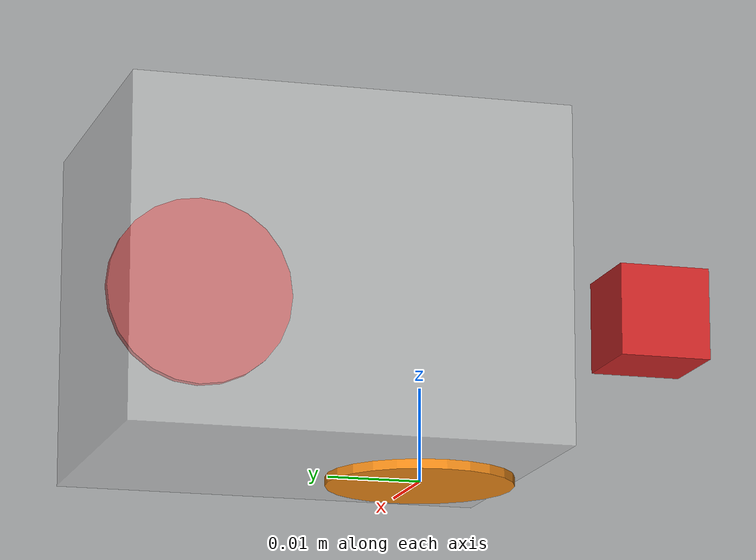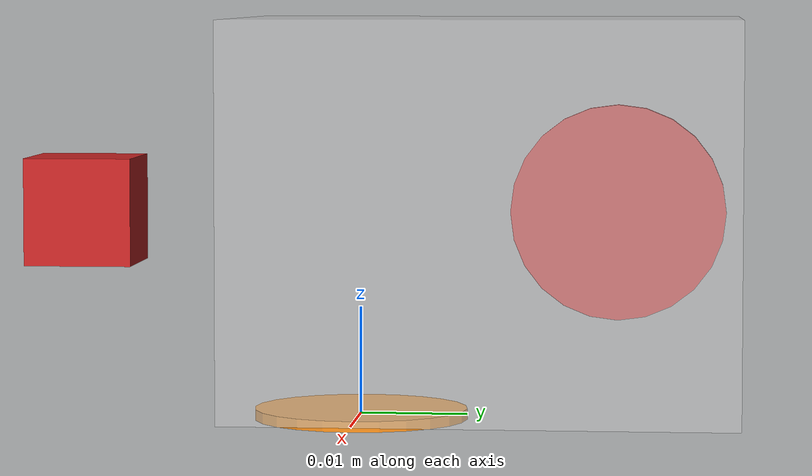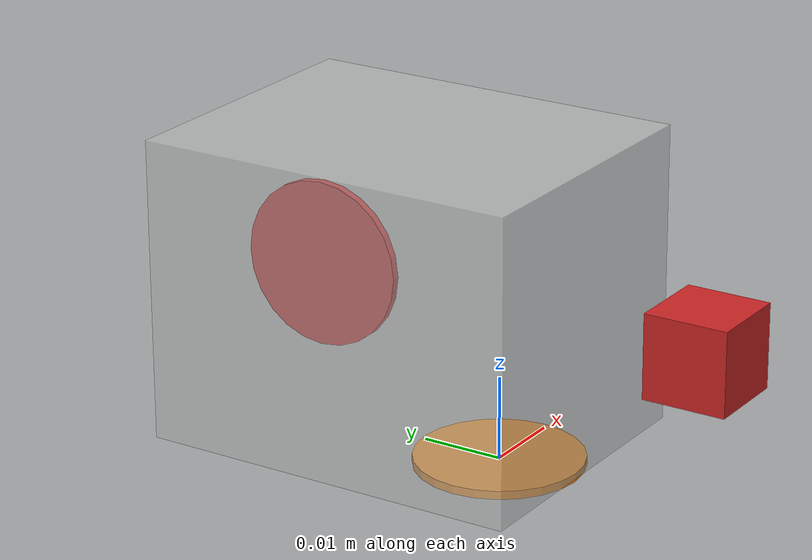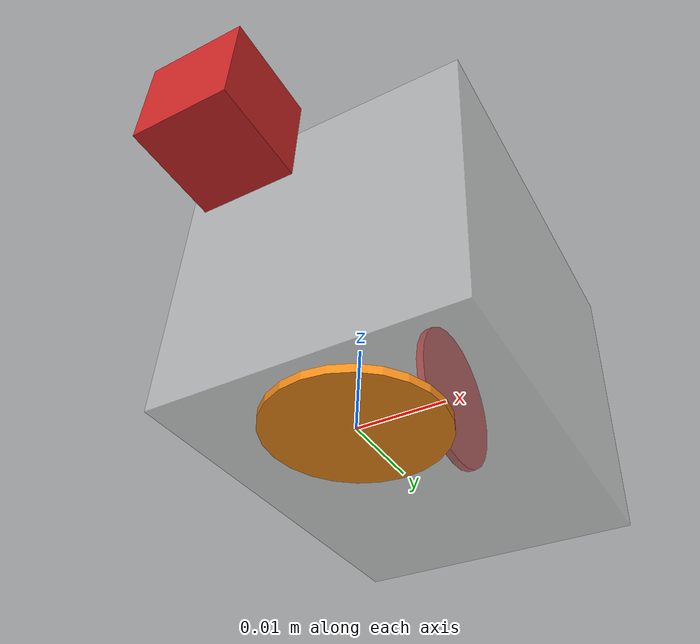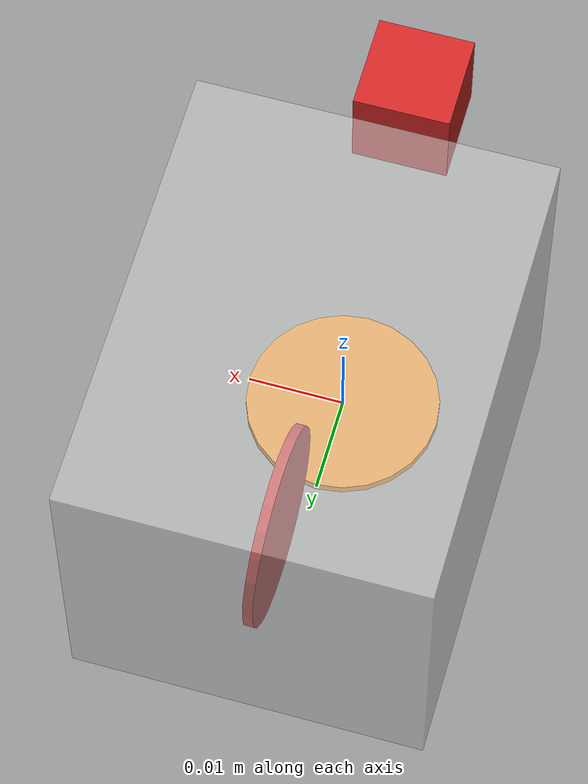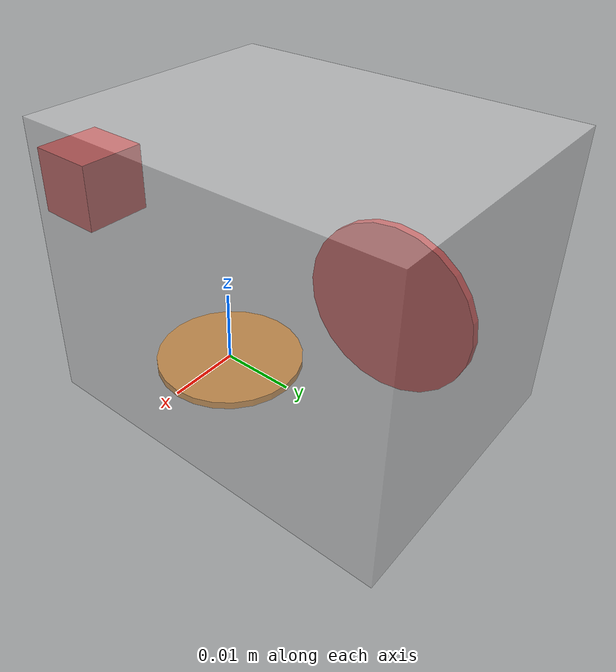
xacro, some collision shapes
<?xml version="1.0"?>
<robot name="my_robo" xmlns:xacro="http://ros.org/wiki/xacro">\
	<xacro:include filename="$(find dynamixel_description)/urdf/_2XL430.urdf.xacro"/>
	<xacro:include filename="$(find dynamixel_description)/urdf/common_properties.xacro"/>

	<link name="base">
		<visual>
			<origin xyz="0 0 0" rpy="0 0 0"/>
			<geometry>
				<cylinder length="0.001" radius="0.01"/>
			</geometry>
			<material name="orange"/>
		</visual>
	</link>

	<xacro:servo_2XL430 parent="base" center_parent="false" child="hone" center_child="true" />

	<link name="hone">
		<visual>
			<origin xyz="0 0 0" rpy="0 0 0"/>
			<geometry>
				<cylinder length="0.001" radius="0.01"/>
			</geometry>
			<material name="red"/>
		</visual>
	</link>

	<link name="weight">
		<visual>
			<origin xyz="0 0 0" rpy="0 0 0"/>
			<geometry>
				<box size="0.01 0.01 0.01"/>
			</geometry>
			<material name="red"/>
		</visual>
		<inertial>
			<origin xyz="0 0 0" rpy="0 0 0" />
			<mass value="0.1" />
			<inertia
				ixx="0.01" ixy="0.0" ixz="0.0"
				iyy="0.01" iyz="0.0"
				izz="0.01" />
		</inertial>
	</link>

	<joint name="fix_wight" type="fixed">
		<parent link="hone"/>
		<child link="weight"/>
		<origin xyz="0 0.05 0" rpy="0 0 0"/>
	</joint>

	<gazebo reference="base">
		<material>Gazebo/Orange</material>
	</gazebo>

	<gazebo reference="hone">
		<material>Gazebo/Red</material>
	</gazebo>

    <!--ros_controlプラグインをロード-->
    <gazebo>
        <plugin name="control" filename="libgazebo_ros_control.so">
        </plugin>
    </gazebo>
</robot>

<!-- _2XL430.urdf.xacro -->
<!-- あとでdynamixel descriptionを作ってそこにれる -->
<robot name=" dynamixel-2XL430" xmlns:xacro="http://ros.org/wiki/xacro">\
	<xacro:macro name="servo_2XL430" params="name_parent:='__default__' parent name_child:='__default__' child center_parent:=false center_child:=false">

        <xacro:if value="${name_parent == '__default__'}">
		    <xacro:property name="parent_joint_name" value="${parent}" />
        </xacro:if>
        <xacro:unless value="${name_parent == '__default__'}">
		    <xacro:property name="parent_joint_name" value="${name_parent}" />
        </xacro:unless>

        <xacro:if value="${name_child == '__default__'}">
		    <xacro:property name="child_joint_name" value="${child}" />
        </xacro:if>
        <xacro:unless value="${name_child == '__default__'}">
		    <xacro:property name="child_joint_name" value="${name_child}" />
        </xacro:unless>

        <xacro:include filename="$(find dynamixel_description)/urdf/_2XL430.gazebo.xacro"/>

		<xacro:property name="path_to_mesh" value="meshes/2XL430-W250-T.stl" />
		<xacro:property name="visual_origin"> <origin xyz="${0} ${0} ${0}" rpy="${0} ${0} ${0}" /> </xacro:property>
		<xacro:property name="L_x_yaw" value="${ 0/1000}" /> <!-- unit [m] --> <!-- converted from [mm] -->
		<xacro:property name="L_y_yaw" value="${12/1000}" /> <!-- unit [m] --> <!-- converted from [mm] -->
		<xacro:property name="L_z_yaw" value="${19/1000}" /> <!-- unit [m] --> <!-- converted from [mm] -->
		<xacro:property name="L_x_pitch" value="${-L_z_yaw}" /> <!-- unit [m] -->
		<xacro:property name="L_y_pitch" value="${-L_y_yaw}" /> <!-- unit [m] -->
		<xacro:property name="L_z_pitch" value="${ L_x_yaw}" /> <!-- unit [m] -->
		<xacro:property name="W_x" value="${36/1000}" /> <!-- unit [m] --> <!-- converted from [mm] -->
		<xacro:property name="W_y" value="${46.5/1000}" /> <!-- unit [m] --> <!-- converted from [mm] -->
		<xacro:property name="W_z" value="${W_x}" /> <!-- unit [m] -->
		<xacro:property name="no_load_speed" value="${61*(2*pi/60)}" /> <!-- unit [rad/sec] --> <!-- converted from [rev/min] -->
		<xacro:property name="stall_torque"  value="${1.5}" /> <!-- unit [Nm] -->
		<xacro:property name="mass"  value="${98.2/1000}" /> <!-- unit [kg] --> <!-- converted from [g] -->
		<xacro:property name="inertia">
			<inertia ixx="0.11"  ixy="0.00" ixz="0.00"
			                     iyy="0.11" iyz="0.00"
			                                izz="0.11" />
		</xacro:property> <!--todo, this is not correct-->

		<joint name="${parent_joint_name}_2XL430_yaw_fixed_" type="fixed">
			<parent link="${parent}"/>
			<child link="${parent_joint_name}_dynx_2XL430_hone_yaw"/>
			<xacro:if value="${center_parent}">
				<origin xyz="0 0 ${-L_z_yaw}" rpy="0 0 0"/>
			</xacro:if>
			<xacro:unless value="${center_parent}">
				<origin xyz="0 0 0" rpy="0 0 0"/>
			</xacro:unless>
		</joint>

		<link name="${parent_joint_name}_dynx_2XL430_hone_yaw">
			<inertial>
				<origin xyz="0 0 0" rpy="0 0 0" />
				<mass value="0.00001" />
				<inertia
					ixx="0.00001" ixy="0.0" ixz="0.0"
					iyy="0.00001" iyz="0.0"
					izz="0.00001" />
			</inertial>
		</link>

		<joint name="${parent_joint_name}_joint" type="continuous">
			<parent link="${parent_joint_name}_dynx_2XL430_hone_yaw"/>
			<child link="${parent_joint_name}_${child_joint_name}_dynx_2XL430"/>
			<axis xyz="0 0 1"/>
			<dynamics damping="0.1"/>
			<limit velocity="${no_load_speed}" effort="${stall_torque}" />
		</joint>

		<link name="${parent_joint_name}_${child_joint_name}_dynx_2XL430">
			<inertial>
			    <origin xyz="${L_x_yaw} ${L_y_yaw} ${L_z_yaw}" rpy="${pi} 0 0"/>
				<mass value="${mass}"/>
				<xacro:insert_block name="inertia"/>
			</inertial>
			<visual>
                <origin xyz="${L_x_yaw} ${L_y_yaw} ${L_z_yaw}" rpy="${pi} 0 0"/>
				<geometry>
					<mesh filename="package://dynamixel_description/${path_to_mesh}" />
				</geometry>
				<material name="gray">
					<color rgba="0.8 0.8 0.8 0.5"/>
				</material>
			</visual>
			<collision>
			   <origin xyz="${L_x_yaw} ${L_y_yaw} ${L_z_yaw}" rpy="${pi} 0 0"/>
				<geometry>
					<box size="${W_x} ${W_y} ${W_z}"/>
				</geometry>
			</collision>
		</link>

		<joint name="${child_joint_name}_joint" type="continuous">
			<parent link="${parent_joint_name}_${child_joint_name}_dynx_2XL430"/>
			<child link="${child_joint_name}_dynx_2XL430_hone_pitch"/>
			<origin xyz="${L_x_yaw-L_x_pitch} ${L_y_yaw-L_y_pitch} ${L_z_yaw-L_z_pitch}" rpy="${pi} 0 0"/>
			<axis xyz="1 0 0"/>
			<dynamics damping="0.1"/>
			<limit velocity="${no_load_speed}" effort="${stall_torque}" />
		</joint>

		<link name="${child_joint_name}_dynx_2XL430_hone_pitch">
			<inertial>
			<origin xyz="0 0 0" rpy="0 0 0" />
			<mass value="0.00001" />
			<inertia
				ixx="0.00001" ixy="0.0" ixz="0.0"
				iyy="0.00001" iyz="0.0"
				izz="0.00001" />
			</inertial>
		</link>

		<joint name="${child_joint_name}_2XL430_pitch_fixed_" type="fixed">
			<parent link="${child_joint_name}_dynx_2XL430_hone_pitch"/>
			<child link="${child}"/>
			<xacro:if value="${center_child}">
				<origin xyz="${L_x_pitch} 0 0" rpy="0 ${pi/2} 0"/>
			</xacro:if>
			<xacro:unless value="${center_child}">
				<origin xyz="0 0 0" rpy="0 ${pi/2} 0"/>
			</xacro:unless>
		</joint>

	</xacro:macro>

</robot>
